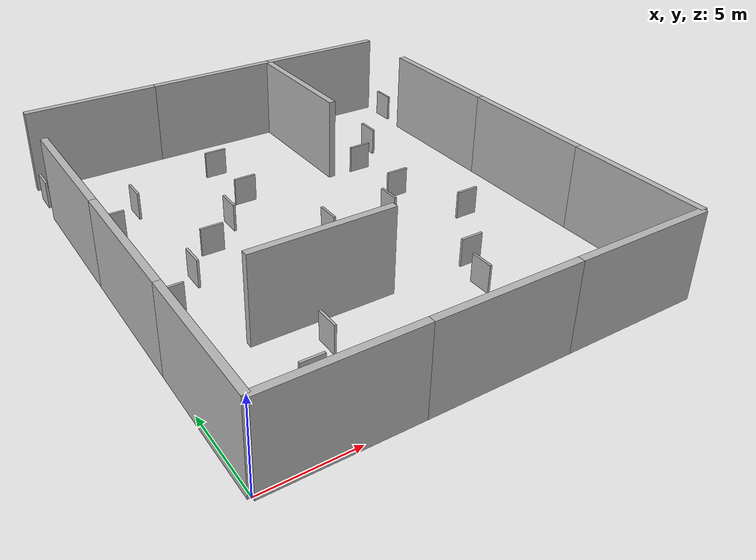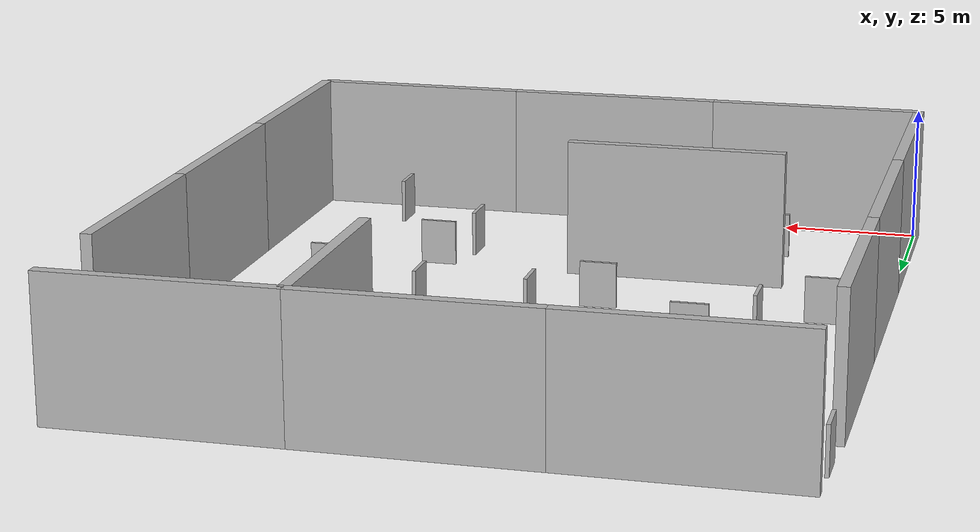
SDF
<?xml version="1.0" ?>
<sdf version="1.5">
  <model name="smaze2d">

    <include>
      <name>w1</name>
      <pose>0 4 0 0 0 1.5708</pose>
      <uri>model://smaze_wall</uri>
    </include>
    <include>
      <name>w2</name>
      <pose>0 12 0 0 0 1.5708</pose>
      <uri>model://smaze_wall</uri>
    </include>
    <include>
      <name>w3</name>
      <pose>0 20 0 0 0 1.5708</pose>
      <uri>model://smaze_wall</uri>
    </include>
    <include>
      <name>w4</name>
      <pose>0 26 0 0 0 1.5708</pose>
      <uri>model://smaze_wall_short</uri>
    </include>

    <include>
      <name>w5</name>
      <pose>24 4 0 0 0 1.5708</pose>
      <uri>model://smaze_wall</uri>
    </include>
    <include>
      <name>w6</name>
      <pose>24 12 0 0 0 1.5708</pose>
      <uri>model://smaze_wall</uri>
    </include>
    <include>
      <name>w7</name>
      <pose>24 20 0 0 0 1.5708</pose>
      <uri>model://smaze_wall</uri>
    </include>
    <include>
      <name>w8</name>
      <pose>24 26 0 0 0 1.5708</pose>
      <uri>model://smaze_wall_short</uri>
    </include>

    <include>
      <name>w11</name>
      <pose>4 0 0 0 0 0</pose>
      <uri>model://smaze_wall</uri>
    </include>
    <include>
      <name>w12</name>
      <pose>12 0 0 0 0 0</pose>
      <uri>model://smaze_wall</uri>
    </include>
    <include>
      <name>w13</name>
      <pose>20 0 0 0 0 0</pose>
      <uri>model://smaze_wall</uri>
    </include>

    <include>
      <name>w14</name>
      <pose>4 28 0 0 0 0</pose>
      <uri>model://smaze_wall</uri>
    </include>
    <include>
      <name>w15</name>
      <pose>12 28 0 0 0 0</pose>
      <uri>model://smaze_wall</uri>
    </include>
    <include>
      <name>w16</name>
      <pose>20 28 0 0 0 0</pose>
      <uri>model://smaze_wall</uri>
    </include>

    <include>
      <name>w17</name>
      <pose>10 24 0 0 0 0</pose>
      <uri>model://smaze_wall_short</uri>
    </include>
    <include>
      <name>w18</name>
      <pose>10 12 0 0 0 0</pose>
      <uri>model://smaze_wall_short</uri>
    </include>
    <include>
      <name>w19</name>
      <pose>8 8 0 0 0 0</pose>
      <uri>model://smaze_wall</uri>
    </include>
    <include>
      <name>w20</name>
      <pose>5 4 0 0 0 0</pose>
      <uri>model://smaze_wall_short</uri>
    </include>
    <include>
      <name>w21</name>
      <pose>17 8 0 0 0 0</pose>
      <uri>model://smaze_wall_short</uri>
    </include>
    <include>
      <name>w22</name>
      <pose>20 12 0 0 0 0</pose>
      <uri>model://smaze_wall_short</uri>
    </include>
    <include>
      <name>w23</name>
      <pose>16 24 0 0 0 1.5708</pose>
      <uri>model://smaze_wall</uri>
    </include>

    <include>
      <name>s1</name>
      <pose>20 22 0 0 0 1.5708</pose>
      <uri>model://smaze_wall_short</uri>
    </include>
    <include>
      <name>s2</name>
      <pose>16 14 0 0 0 1.5708</pose>
      <uri>model://smaze_wall_short</uri>
    </include>
    <include>
      <name>s3</name>
      <pose>16 6 0 0 0 1.5708</pose>
      <uri>model://smaze_wall_short</uri>
    </include>
    <include>
      <name>s4</name>
      <pose>20 2 0 0 0 1.5708</pose>
      <uri>model://smaze_wall_short</uri>
    </include>
    <include>
      <name>s5</name>
      <pose>12 2 0 0 0 1.5708</pose>
      <uri>model://smaze_wall_short</uri>
    </include>
    <include>
      <name>s6</name>
      <pose>7 6 0 0 0 1.5708</pose>
      <uri>model://smaze_wall_short</uri>
    </include>
    <include>
      <name>s7</name>
      <pose>4 14 0 0 0 1.5708</pose>
      <uri>model://smaze_wall_short</uri>
    </include>
    <include>
      <name>s8</name>
      <pose>8 18 0 0 0 1.5708</pose>
      <uri>model://smaze_wall_short</uri>
    </include>
    <include>
      <name>s9</name>
      <pose>4 22 0 0 0 1.5708</pose>
      <uri>model://smaze_wall_short</uri>
    </include>
    <include>
      <name>s10</name>
      <pose>12 14 0 0 0 1.5708</pose>
      <uri>model://smaze_wall_short</uri>
    </include>

    <include>
      <name>v1</name>
      <pose>2 12 0 0 0 0</pose>
      <uri>model://smaze_wall_short</uri>
    </include>
    <include>
      <name>v2</name>
      <pose>2 20 0 0 0 0</pose>
      <uri>model://smaze_wall_short</uri>
    </include>
    <include>
      <name>v3</name>
      <pose>6 16 0 0 0 0</pose>
      <uri>model://smaze_wall_short</uri>
    </include>
    <include>
      <name>v4</name>
      <pose>10 20 0 0 0 0</pose>
      <uri>model://smaze_wall_short</uri>
    </include>
    <include>
      <name>v5</name>
      <pose>18 16 0 0 0 0</pose>
      <uri>model://smaze_wall_short</uri>
    </include>
    <include>
      <name>v6</name>
      <pose>18 20 0 0 0 0</pose>
      <uri>model://smaze_wall_short</uri>
    </include>

  </model>
</sdf>

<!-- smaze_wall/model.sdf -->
<sdf version="1.5">
  <model name="smaze_wall">
    <static>true</static>
    <link name="link">
      <pose>0 0 2.5 0 0 0</pose>
      <collision name="collision">
        <geometry>
          <box>
            <size>8 0.4 5</size>
          </box>
        </geometry>
      </collision>
      <visual name="visual">
        <geometry>
          <box>
            <size>8 0.4 5</size>
          </box>
        </geometry>
        <material>
          <script>
            <uri>model://smaze_wall/materials/scripts</uri>
            <uri>model://smaze_wall/materials/textures</uri>
            <name>vrc/smaze_wall</name>
          </script>
        </material>
      </visual>
    </link>
  </model>
</sdf>

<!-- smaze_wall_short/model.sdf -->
<sdf version="1.5">
  <model name="smaze_wall_short">
    <static>true</static>
    <link name="link">
				<pose>0.0 0.0 0.8250000000000001 0.0 0.0 0.0</pose>
      <collision name="collision">
        <geometry>
          <box>
				<size>1.32 0.132 1.6500000000000001</size>
          </box>
        </geometry>
      </collision>
      <visual name="visual">
        <geometry>
          <box>
				<size>1.32 0.132 1.6500000000000001</size>
          </box>
        </geometry>
        <material>
          <script>
            <uri>model://smaze_wall_short/materials/scripts</uri>
            <uri>model://smaze_wall_short/materials/textures</uri>
            <name>vrc/smaze_wall_short</name>
          </script>
        </material>
      </visual>
    </link>
  </model>
</sdf>
